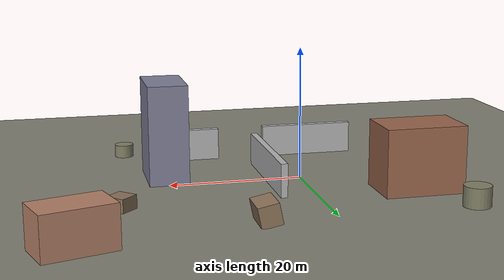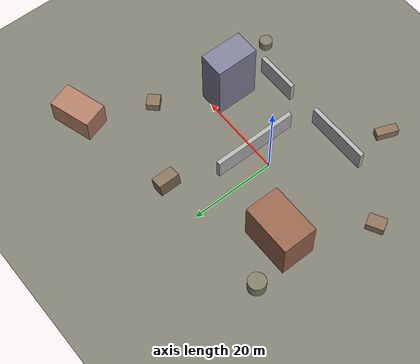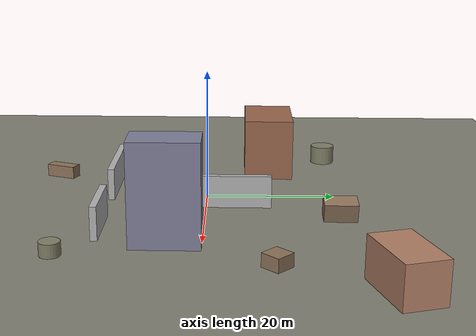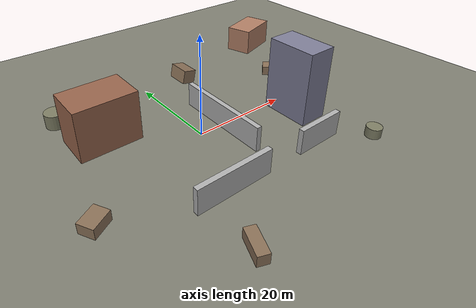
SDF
<?xml version="1.0" ?>
<sdf version="1.9">
  <world name="pegasus_planning_test">

    <!-- Physics -->
    <physics name="1ms" type="ignored">
      <max_step_size>0.001</max_step_size>
      <real_time_factor>1.0</real_time_factor>
    </physics>

    <!-- Plugins -->
    <plugin filename="gz-sim-physics-system" name="gz::sim::systems::Physics"/>
    <plugin filename="gz-sim-scene-broadcaster-system" name="gz::sim::systems::SceneBroadcaster"/>
    <plugin filename="gz-sim-user-commands-system" name="gz::sim::systems::UserCommands"/>

    <!-- Lighting -->
    <light type="directional" name="sun">
      <cast_shadows>true</cast_shadows>
      <pose>0 0 50 0 0 0</pose>
      <diffuse>0.9 0.9 0.9 1</diffuse>
      <direction>-0.5 0.1 -0.9</direction>
    </light>

    <!-- Ground Plane -->
    <model name="ground_plane">
      <static>true</static>
      <link name="link">
        <collision name="collision">
          <geometry>
            <plane><normal>0 0 1</normal><size>200 200</size></plane>
          </geometry>
        </collision>
        <visual name="visual">
          <geometry>
            <plane><normal>0 0 1</normal><size>200 200</size></plane>
          </geometry>
          <material>
            <ambient>0.5 0.5 0.45 1</ambient>
            <diffuse>0.5 0.5 0.45 1</diffuse>
          </material>
        </visual>
      </link>
    </model>

    <!-- ════════════════════════════════════════════════════
         BUILDINGS — large rectangular obstacles
         ════════════════════════════════════════════════════ -->

    <!-- Building A: large warehouse (center-left) -->
    <model name="building_a">
      <static>true</static>
      <pose>-15 10 5 0 0 0</pose>
      <link name="link">
        <collision name="col"><geometry><box><size>12 8 10</size></box></geometry></collision>
        <visual name="vis"><geometry><box><size>12 8 10</size></box></geometry>
          <material><ambient>0.6 0.4 0.3 1</ambient><diffuse>0.6 0.4 0.3 1</diffuse></material>
        </visual>
      </link>
    </model>

    <!-- Building B: office tower (right side) -->
    <model name="building_b">
      <static>true</static>
      <pose>20 -5 7.5 0 0 0</pose>
      <link name="link">
        <collision name="col"><geometry><box><size>6 10 15</size></box></geometry></collision>
        <visual name="vis"><geometry><box><size>6 10 15</size></box></geometry>
          <material><ambient>0.5 0.5 0.6 1</ambient><diffuse>0.5 0.5 0.6 1</diffuse></material>
        </visual>
      </link>
    </model>

    <!-- Building C: collapsed structure (far end) -->
    <model name="building_c">
      <static>true</static>
      <pose>35 25 3 0 0 0.3</pose>
      <link name="link">
        <collision name="col"><geometry><box><size>10 6 6</size></box></geometry></collision>
        <visual name="vis"><geometry><box><size>10 6 6</size></box></geometry>
          <material><ambient>0.7 0.5 0.4 1</ambient><diffuse>0.7 0.5 0.4 1</diffuse></material>
        </visual>
      </link>
    </model>

    <!-- ════════════════════════════════════════════════════
         WALLS — long thin obstacles to force routing
         ════════════════════════════════════════════════════ -->

    <!-- Wall 1: north-south barrier forcing a detour -->
    <model name="wall_1">
      <static>true</static>
      <pose>5 0 2.5 0 0 0</pose>
      <link name="link">
        <collision name="col"><geometry><box><size>1 20 5</size></box></geometry></collision>
        <visual name="vis"><geometry><box><size>1 20 5</size></box></geometry>
          <material><ambient>0.7 0.7 0.7 1</ambient><diffuse>0.7 0.7 0.7 1</diffuse></material>
        </visual>
      </link>
    </model>

    <!-- Wall 2: east-west barrier with a gap -->
    <model name="wall_2a">
      <static>true</static>
      <pose>-5 -15 2.5 0 0 0</pose>
      <link name="link">
        <collision name="col"><geometry><box><size>15 1 5</size></box></geometry></collision>
        <visual name="vis"><geometry><box><size>15 1 5</size></box></geometry>
          <material><ambient>0.7 0.7 0.7 1</ambient><diffuse>0.7 0.7 0.7 1</diffuse></material>
        </visual>
      </link>
    </model>

    <model name="wall_2b">
      <static>true</static>
      <pose>15 -15 2.5 0 0 0</pose>
      <link name="link">
        <collision name="col"><geometry><box><size>10 1 5</size></box></geometry></collision>
        <visual name="vis"><geometry><box><size>10 1 5</size></box></geometry>
          <material><ambient>0.7 0.7 0.7 1</ambient><diffuse>0.7 0.7 0.7 1</diffuse></material>
        </visual>
      </link>
    </model>

    <!-- ════════════════════════════════════════════════════
         DEBRIS — scattered smaller obstacles
         ════════════════════════════════════════════════════ -->

    <model name="debris_1">
      <static>true</static>
      <pose>-25 -8 1 0 0 0.5</pose>
      <link name="link">
        <collision name="col"><geometry><box><size>4 3 2</size></box></geometry></collision>
        <visual name="vis"><geometry><box><size>4 3 2</size></box></geometry>
          <material><ambient>0.55 0.45 0.35 1</ambient><diffuse>0.55 0.45 0.35 1</diffuse></material>
        </visual>
      </link>
    </model>

    <model name="debris_2">
      <static>true</static>
      <pose>10 20 1.5 0 0.2 0</pose>
      <link name="link">
        <collision name="col"><geometry><box><size>3 5 3</size></box></geometry></collision>
        <visual name="vis"><geometry><box><size>3 5 3</size></box></geometry>
          <material><ambient>0.55 0.45 0.35 1</ambient><diffuse>0.55 0.45 0.35 1</diffuse></material>
        </visual>
      </link>
    </model>

    <model name="debris_3">
      <static>true</static>
      <pose>-10 -25 1 0 0 1.2</pose>
      <link name="link">
        <collision name="col"><geometry><box><size>5 2 2</size></box></geometry></collision>
        <visual name="vis"><geometry><box><size>5 2 2</size></box></geometry>
          <material><ambient>0.55 0.45 0.35 1</ambient><diffuse>0.55 0.45 0.35 1</diffuse></material>
        </visual>
      </link>
    </model>

    <model name="debris_4">
      <static>true</static>
      <pose>28 10 1 0 0 0.8</pose>
      <link name="link">
        <collision name="col"><geometry><box><size>3 3 2</size></box></geometry></collision>
        <visual name="vis"><geometry><box><size>3 3 2</size></box></geometry>
          <material><ambient>0.55 0.45 0.35 1</ambient><diffuse>0.55 0.45 0.35 1</diffuse></material>
        </visual>
      </link>
    </model>

    <!-- Cylindrical rubble -->
    <model name="rubble_1">
      <static>true</static>
      <pose>-20 20 1.5 0 0 0</pose>
      <link name="link">
        <collision name="col"><geometry><cylinder><radius>2</radius><length>3</length></cylinder></geometry></collision>
        <visual name="vis"><geometry><cylinder><radius>2</radius><length>3</length></cylinder></geometry>
          <material><ambient>0.5 0.5 0.4 1</ambient><diffuse>0.5 0.5 0.4 1</diffuse></material>
        </visual>
      </link>
    </model>

    <model name="rubble_2">
      <static>true</static>
      <pose>25 -20 1 0 0 0</pose>
      <link name="link">
        <collision name="col"><geometry><cylinder><radius>1.5</radius><length>2</length></cylinder></geometry></collision>
        <visual name="vis"><geometry><cylinder><radius>1.5</radius><length>2</length></cylinder></geometry>
          <material><ambient>0.5 0.5 0.4 1</ambient><diffuse>0.5 0.5 0.4 1</diffuse></material>
        </visual>
      </link>
    </model>

  </world>
</sdf>
